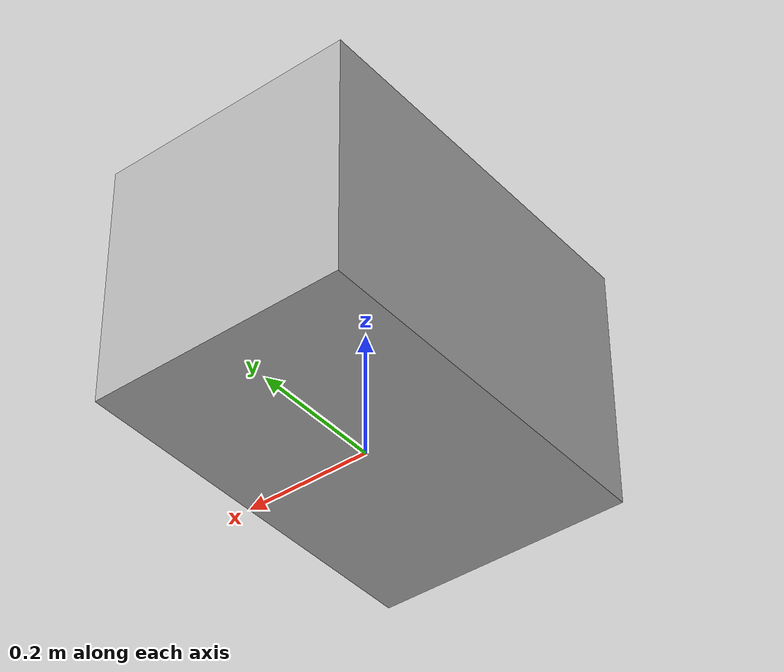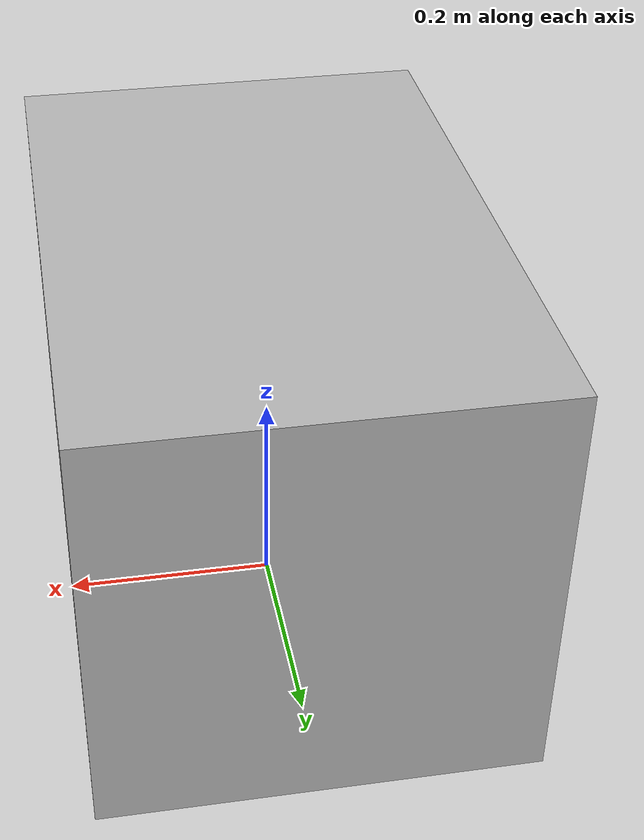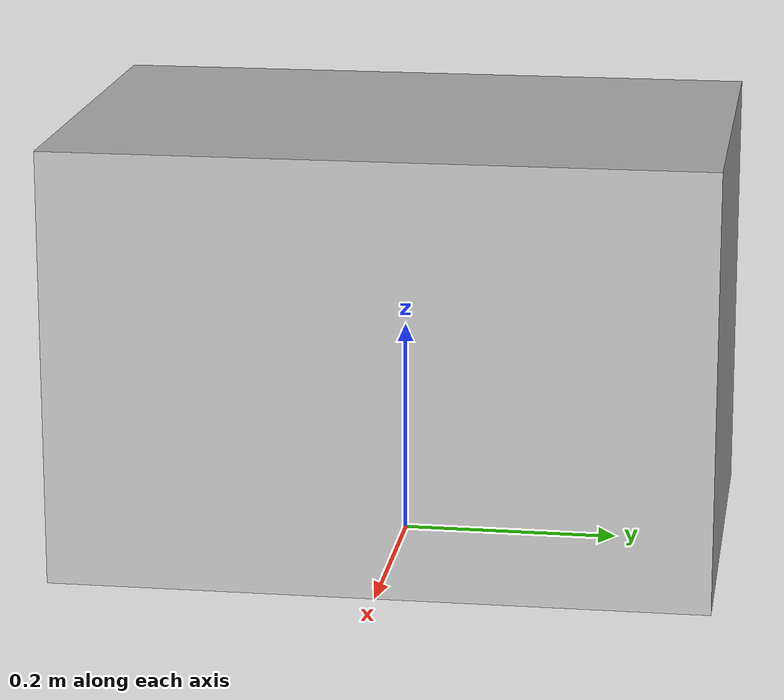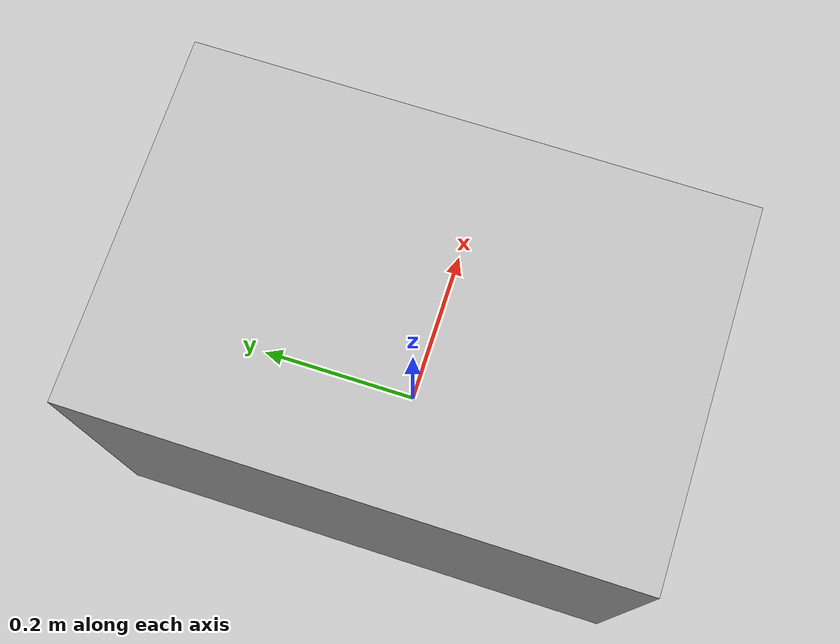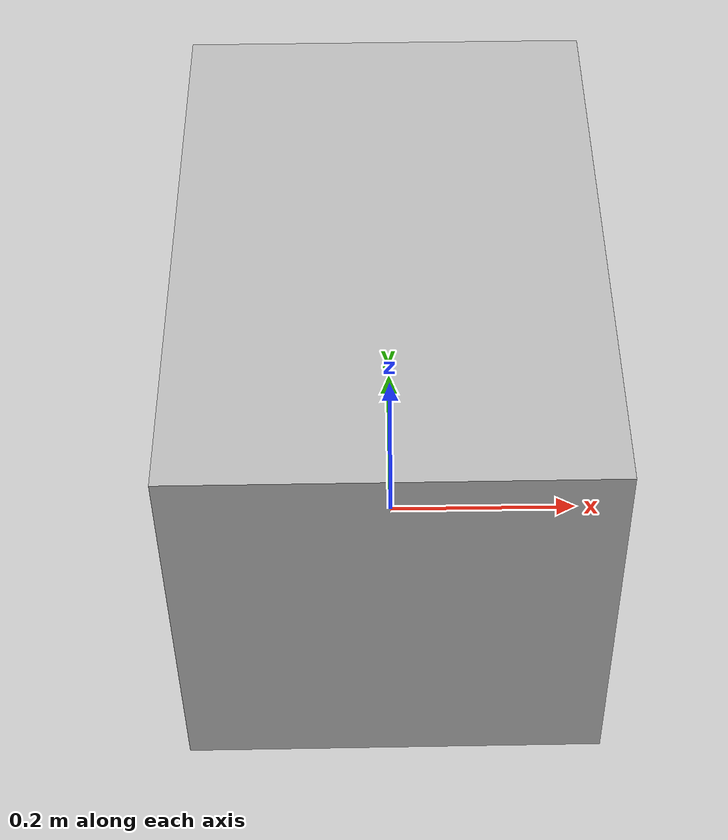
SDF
<?xml version='1.0'?>
<sdf version='1.6'>
  <model name='table'>
    <link name='link'>
      <pose>0 0 0.2 0 -0 0</pose>
      <inertial>
        <!--
          惯性属性中心点，通常与几何中心一致
          设置为原点(0,0,0)表示惯性中心与链接坐标系原点重合
        -->
        <pose>0 0 0 0 -0 0</pose>
        <!-- 质量: 10kg，适合模拟稳定的桌子结构 -->
        <mass>10</mass>
        <inertia>
          <ixx>0.166667</ixx>  <!-- x轴转动惯性 -->
          <ixy>0</ixy>          <!-- xy平面耦合惯性 -->
          <ixz>0</ixz>          <!-- xz平面耦合惯性 -->
          <iyy>0.166667</iyy>   <!-- y轴转动惯性 -->
          <iyz>0</iyz>          <!-- yz平面耦合惯性 -->
          <izz>0.166667</izz>   <!-- z轴转动惯性 -->
        </inertia>
      </inertial>
      <!-- 禁用自碰撞检测: 0表示链接内部不进行碰撞检测 -->
      <self_collide>0</self_collide>
      <!-- 禁用风力效果: 桌子不受风力影响 -->
      <enable_wind>0</enable_wind>
      <!-- 非运动学模式: 0表示受物理引擎控制，而非纯运动学 -->
      <kinematic>0</kinematic>
      <visual name='visual'>
        <!-- 视觉元素位姿: 相对于链接坐标系 -->
        <pose>0 0 0 0 -0 0</pose>
        <geometry>
          <box>
            <size>0.4 0.6 0.4</size>
          </box>
        </geometry>
        <!--
          材质属性: 定义桌面外观
          使用Gazebo内置的灰色材质
        -->
        <material>
          <script>
            <!-- Gazebo标准材质：灰色 -->
            <n>Gazebo/Grey</n>
            <!-- 材质脚本路径 -->
            <uri>file://media/materials/scripts/gazebo.material</uri>
          </script>
          <!-- 像素着色器: 使用标准着色模型 -->
          <shader type='pixel'/>
        </material>
        <!-- 视觉元素位姿: 与链接原点对齐 -->
        <pose>0 0 0 0 -0 0</pose>
        <!-- 透明度: 0表示完全不透明 -->
        <transparency>0</transparency>
        <!-- 投射阴影: 1表示启用阴影投射 -->
        <cast_shadows>1</cast_shadows>
      </visual>
      <collision name='collision'>
        <!-- 激光反射率: 对激光传感器的反射强度 -->
        <laser_retro>0</laser_retro>
        <!-- 最大接触点数: 影响碰撞计算精度 -->
        <max_contacts>10</max_contacts>
        <!-- 碰撞几何体位姿: 与链接原点对齐 -->
        <pose>0 0 0 0 -0 0</pose>
        <!-- 碰撞几何体: 与视觉几何体尺寸一致的长方体 -->
        <geometry>
          <box>
            <size>0.4 0.6 0.4</size>
          </box>
        </geometry>
        <surface>
          <!-- 摩擦特性: 控制探头与桌面接触时的滑动行为 -->
          <friction>
            <ode>
              <!--
                摩擦系数: 1.0，较高摩擦力
                适合模拟桌面材质，防止物体轻易滑落
              -->
              <mu>1</mu>
              <mu2>1</mu2>
              <!-- 主摩擦方向: 使用默认方向 -->
              <fdir1>0 0 0</fdir1>
              <!-- 无滑移: 0表示不允许微小滑动 -->
              <slip1>0</slip1>
              <slip2>0</slip2>
            </ode>
            <!-- 扭转摩擦: 控制物体旋转时的摩擦 -->
            <torsional>
              <!-- 扭转摩擦系数: 1表示较高扭转阻力 -->
              <coefficient>1</coefficient>
              <patch_radius>0</patch_radius>
              <surface_radius>0</surface_radius>
              <!-- 使用接触面积计算: 1表示启用 -->
              <use_patch_radius>1</use_patch_radius>
              <ode>
                <!-- 扭转滑移: 0表示不允许扭转滑动 -->
                <slip>0</slip>
              </ode>
            </torsional>
          </friction>
          <!-- 反弹特性: 控制物体碰撞后的弹性行为 -->
          <bounce>
            <!-- 恢复系数: 0表示完全不反弹 -->
            <restitution_coefficient>0</restitution_coefficient>
            <!-- 反弹阈值: 大于此值的碰撞速度才计算反弹 -->
            <threshold>1e+06</threshold>
          </bounce>
          <!-- 接触特性: 精细控制物理接触行为 -->
          <contact>
            <!-- 非接触碰撞: 0表示禁用非接触碰撞响应 -->
            <collide_without_contact>0</collide_without_contact>
            <collide_without_contact_bitmask>1</collide_without_contact_bitmask>
            <!-- 碰撞掩码: 用于选择性碰撞检测 -->
            <collide_bitmask>1</collide_bitmask>
            <!-- ODE物理引擎接触参数 -->
            <ode>
              <!--
                接触软度: 控制接触面弹性
                0表示刚性接触，适合模拟硬桌面
              -->
              <soft_cfm>0</soft_cfm>
              <!-- 错误减小率: 控制接触误差修正速度 -->
              <soft_erp>0.2</soft_erp>
              <!--
                接触刚度系数: 1e+13表示非常硬的表面
                比软块(1,000,000)高得多，模拟坚硬桌面
              -->
              <kp>1e+13</kp>
              <!-- 阻尼系数: 控制能量耗散率 -->
              <kd>1</kd>
              <!-- 最大接触速度: 限制接触计算中的最大速度 -->
              <max_vel>0.01</max_vel>
              <!-- 最小接触深度: 小于此值的接触被忽略 -->
              <min_depth>0</min_depth>
            </ode>
            <!-- Bullet物理引擎接触参数（备用引擎） -->
            <bullet>
              <!-- 脉冲分离: 使用分离脉冲算法提高稳定性 -->
              <split_impulse>1</split_impulse>
              <split_impulse_penetration_threshold>-0.01</split_impulse_penetration_threshold>
              <!-- Bullet引擎特有的接触参数 -->
              <soft_cfm>0</soft_cfm>
              <soft_erp>0.2</soft_erp>
              <kp>1e+13</kp>
              <kd>1</kd>
            </bullet>
          </contact>
        </surface>
      </collision>
    </link>
    <!--
      静态属性: 1表示桌子固定不移动
      设置为静态可提高仿真性能，适合不需要移动的物体
    -->
    <static>1</static>
    <!--
      允许自动禁用: 1表示当物体静止时可被物理引擎优化
      提高长时间仿真的计算效率
    -->
    <allow_auto_disable>1</allow_auto_disable>
  </model>
</sdf>
